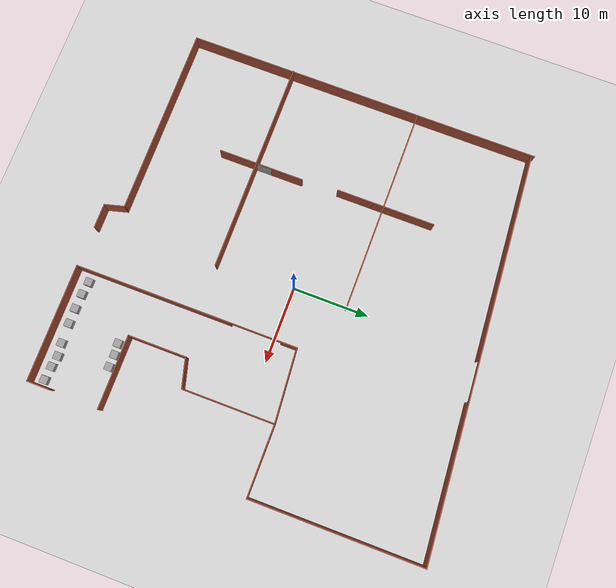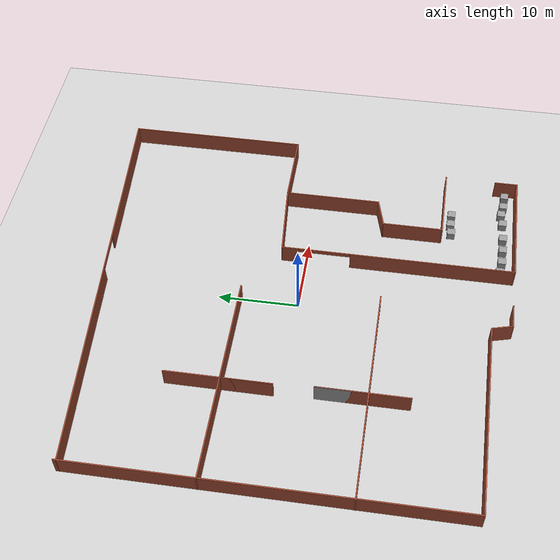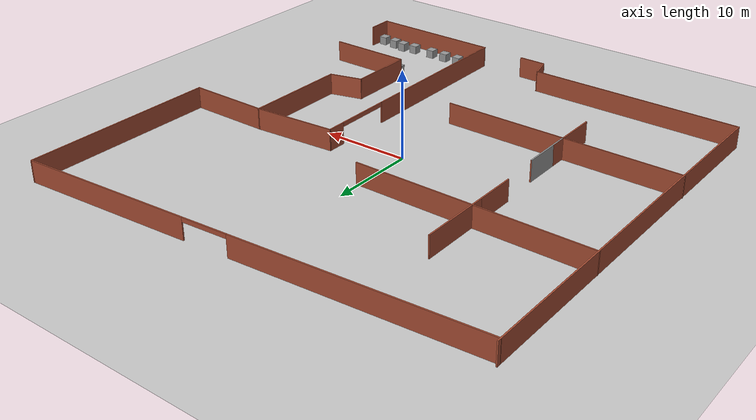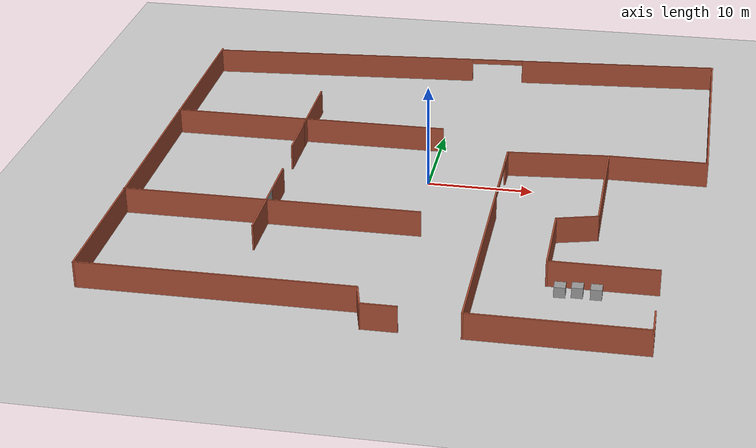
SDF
<sdf version="1.7">
 <world name="default">
  <light name="sun" type="directional">
   <pose>0 0 10 0 -0 0</pose>
   <diffuse>0.8 0.8 0.8 1</diffuse>
   <specular>0.2 0.2 0.2 1</specular>
   <attenuation>
    <range>1000</range>
    <constant>0.9</constant>
    <linear>0.01</linear>
    <quadratic>0.001</quadratic>
   </attenuation>
   <direction>-0.5 0.1 -0.9</direction>
   <spot><inner_angle>0</inner_angle><outer_angle>0</outer_angle><falloff>0</falloff></spot>
  </light>
  <model name="ground_plane">
   <static>1</static>
   <link name="link">
    <collision name="collision">
     <geometry><plane><normal>0 0 1</normal><size>100 100</size></plane></geometry>
     <surface>
      <contact><collide_bitmask>65535</collide_bitmask></contact>
      <friction><ode><mu>100</mu><mu2>50</mu2></ode></friction>
     </surface>
    </collision>
    <visual name="visual">
     <cast_shadows>0</cast_shadows>
     <geometry><plane><normal>0 0 1</normal><size>100 100</size></plane></geometry>
     <material>
      <script><uri>file://media/materials/scripts/gazebo.material</uri><name>Gazebo/Grey</name></script>
     </material>
    </visual>
   </link>
  </model>
  <gravity>0 0 -9.8</gravity>
  <magnetic_field>6e-06 2.3e-05 -4.2e-05</magnetic_field>
  <atmosphere type="adiabatic"/>
  <physics type="ode">
   <max_step_size>0.001</max_step_size>
   <real_time_factor>1</real_time_factor>
   <real_time_update_rate>1000</real_time_update_rate>
  </physics>
  <scene><ambient>0.4 0.4 0.4 1</ambient><background>0.7 0.7 0.7 1</background><shadows>1</shadows></scene>
  <spherical_coordinates>
   <surface_model>EARTH_WGS84</surface_model>
   <latitude_deg>0</latitude_deg>
   <longitude_deg>0</longitude_deg>
   <elevation>0</elevation>
   <heading_deg>0</heading_deg>
  </spherical_coordinates>
  <model name="edificio">
   <pose>-0.252096 0.100366 0 0 -0 0</pose>
   <link name="Wall_23">
    <collision name="Wall_23_Collision">
     <geometry><box><size>46.75 0.15 2.5</size></box></geometry>
     <pose>0 0 1.25 0 -0 0</pose>
    </collision>
    <visual name="Wall_23_Visual">
     <pose>0 0 1.25 0 -0 0</pose>
     <geometry><box><size>46.75 0.15 2.5</size></box></geometry>
     <material>
      <script><uri>file://media/materials/scripts/gazebo.material</uri><name>Gazebo/Bricks</name></script>
      <ambient>1 1 1 1</ambient>
     </material>
     <meta><layer>0</layer></meta>
    </visual>
    <pose>-26.3118 -0.446028 0 0 -0 -1.5708</pose>
   </link>
   <link name="Wall_24">
    <collision name="Wall_24_Collision">
     <geometry><box><size>24.75 0.15 2.5</size></box></geometry>
     <pose>0 0 1.25 0 -0 0</pose>
    </collision>
    <visual name="Wall_24_Visual">
     <pose>0 0 1.25 0 -0 0</pose>
     <geometry><box><size>24.75 0.15 2.5</size></box></geometry>
     <material>
      <script><uri>file://media/materials/scripts/gazebo.material</uri><name>Gazebo/Bricks</name></script>
      <ambient>1 1 1 1</ambient>
     </material>
     <meta><layer>0</layer></meta>
    </visual>
    <pose>-14.0118 -23.746 0 0 -0 0</pose>
   </link>
   <link name="Wall_25">
    <collision name="Wall_25_Collision">
     <geometry><box><size>2.75 0.15 2.5</size></box></geometry>
     <pose>0 0 1.25 0 -0 0</pose>
    </collision>
    <visual name="Wall_25_Visual">
     <pose>0 0 1.25 0 -0 0</pose>
     <geometry><box><size>2.75 0.15 2.5</size></box></geometry>
     <material>
      <script><uri>file://media/materials/scripts/gazebo.material</uri><name>Gazebo/Bricks</name></script>
      <ambient>1 1 1 1</ambient>
     </material>
     <meta><layer>0</layer></meta>
    </visual>
    <pose>-1.37532 -25.0017 0 0 -0 -1.309</pose>
   </link>
   <link name="Wall_26">
    <collision name="Wall_26_Collision">
     <geometry><box><size>3.25 0.15 2.5</size></box></geometry>
     <pose>0 0 1.25 0 -0 0</pose>
    </collision>
    <visual name="Wall_26_Visual">
     <pose>0 0 1.25 0 -0 0</pose>
     <geometry><box><size>3.25 0.15 2.5</size></box></geometry>
     <material>
      <script><uri>file://media/materials/scripts/gazebo.material</uri><name>Gazebo/Bricks</name></script>
      <ambient>1 1 1 1</ambient>
     </material>
     <meta><layer>0</layer></meta>
    </visual>
    <pose>0.511142 -26.2574 0 0 -0 0</pose>
   </link>
   <link name="Wall_28">
    <collision name="Wall_28_Collision">
     <geometry><box><size>15.5 0.15 2.5</size></box></geometry>
     <pose>0 0 1.25 0 -0 0</pose>
    </collision>
    <visual name="Wall_28_Visual">
     <pose>0 0 1.25 0 -0 0</pose>
     <geometry><box><size>15.5 0.15 2.5</size></box></geometry>
     <material>
      <script><uri>file://media/materials/scripts/gazebo.material</uri><name>Gazebo/Bricks</name></script>
      <ambient>1 1 1 1</ambient>
     </material>
     <meta><layer>0</layer></meta>
    </visual>
    <pose>15.1194 -26.359 0 0 -0 0</pose>
   </link>
   <link name="Wall_29">
    <collision name="Wall_29_Collision">
     <geometry><box><size>3 0.15 2.5</size></box></geometry>
     <pose>0 0 1.25 0 -0 0</pose>
    </collision>
    <visual name="Wall_29_Visual">
     <pose>0 0 1.25 0 -0 0</pose>
     <geometry><box><size>3 0.15 2.5</size></box></geometry>
     <material>
      <script><uri>file://media/materials/scripts/gazebo.material</uri><name>Gazebo/Bricks</name></script>
      <ambient>1 1 1 1</ambient>
     </material>
     <meta><layer>0</layer></meta>
    </visual>
    <pose>22.7944 -24.934 0 0 -0 1.5708</pose>
   </link>
   <link name="Wall_31">
    <collision name="Wall_31_Collision">
     <geometry><box><size>9.75 0.15 2.5</size></box></geometry>
     <pose>0 0 1.25 0 -0 0</pose>
    </collision>
    <visual name="Wall_31_Visual">
     <pose>0 0 1.25 0 -0 0</pose>
     <geometry><box><size>9.75 0.15 2.5</size></box></geometry>
     <material>
      <script><uri>file://media/materials/scripts/gazebo.material</uri><name>Gazebo/Bricks</name></script>
      <ambient>1 1 1 1</ambient>
     </material>
     <meta><layer>0</layer></meta>
    </visual>
    <pose>18.1011 -16.9428 0 0 -0 3.14159</pose>
   </link>
   <link name="Wall_32">
    <collision name="Wall_32_Collision">
     <geometry><box><size>7.75 0.15 2.5</size></box></geometry>
     <pose>0 0 1.25 0 -0 0</pose>
    </collision>
    <visual name="Wall_32_Visual">
     <pose>0 0 1.25 0 -0 0</pose>
     <geometry><box><size>7.75 0.15 2.5</size></box></geometry>
     <material>
      <script><uri>file://media/materials/scripts/gazebo.material</uri><name>Gazebo/Bricks</name></script>
      <ambient>1 1 1 1</ambient>
     </material>
     <meta><layer>0</layer></meta>
    </visual>
    <pose>13.3011 -13.1428 0 0 -0 1.5708</pose>
   </link>
   <link name="Wall_33">
    <collision name="Wall_33_Collision">
     <geometry><box><size>4 0.15 2.5</size></box></geometry>
     <pose>0 0 1.25 0 -0 0</pose>
    </collision>
    <visual name="Wall_33_Visual">
     <pose>0 0 1.25 0 -0 0</pose>
     <geometry><box><size>4 0.15 2.5</size></box></geometry>
     <material>
      <script><uri>file://media/materials/scripts/gazebo.material</uri><name>Gazebo/Bricks</name></script>
      <ambient>1 1 1 1</ambient>
     </material>
     <meta><layer>0</layer></meta>
    </visual>
    <pose>15.1605 -8.84454 0 0 -0 0.261799</pose>
   </link>
   <link name="Wall_34">
    <collision name="Wall_34_Collision">
     <geometry><box><size>12.25 0.15 2.5</size></box></geometry>
     <pose>0 0 1.25 0 -0 0</pose>
    </collision>
    <visual name="Wall_34_Visual">
     <pose>0 0 1.25 0 -0 0</pose>
     <geometry><box><size>12.25 0.15 2.5</size></box></geometry>
     <material>
      <script><uri>file://media/materials/scripts/gazebo.material</uri><name>Gazebo/Bricks</name></script>
      <ambient>1 1 1 1</ambient>
     </material>
     <meta><layer>0</layer></meta>
    </visual>
    <pose>17.02 -2.29631 0 0 -0 1.5708</pose>
   </link>
   <link name="Wall_35">
    <collision name="Wall_35_Collision">
     <geometry><box><size>9.5 0.15 2.5</size></box></geometry>
     <pose>0 0 1.25 0 -0 0</pose>
    </collision>
    <visual name="Wall_35_Visual">
     <pose>0 0 1.25 0 -0 0</pose>
     <geometry><box><size>9.5 0.15 2.5</size></box></geometry>
     <material>
      <script><uri>file://media/materials/scripts/gazebo.material</uri><name>Gazebo/Bricks</name></script>
      <ambient>1 1 1 1</ambient>
     </material>
     <meta><layer>0</layer></meta>
    </visual>
    <pose>21.695 3.75369 0 0 -0 0</pose>
   </link>
   <link name="Wall_36">
    <collision name="Wall_36_Collision">
     <geometry><box><size>22.75 0.15 2.5</size></box></geometry>
     <pose>0 0 1.25 0 -0 0</pose>
    </collision>
    <visual name="Wall_36_Visual">
     <pose>0 0 1.25 0 -0 0</pose>
     <geometry><box><size>22.75 0.15 2.5</size></box></geometry>
     <material>
      <script><uri>file://media/materials/scripts/gazebo.material</uri><name>Gazebo/Bricks</name></script>
      <ambient>1 1 1 1</ambient>
     </material>
     <meta><layer>0</layer></meta>
    </visual>
    <pose>26.37 15.0537 0 0 -0 1.5708</pose>
   </link>
   <link name="Wall_37">
    <pose>0.029084 24.4262 0 0 -0 -3.06855</pose>
    <visual name="Wall_37_Visual_0">
     <pose>-16.3631 0 1.25 0 -0 0</pose>
     <geometry><box><size>20.2464 0.15 2.5</size></box></geometry>
     <material>
      <script><uri>file://media/materials/scripts/gazebo.material</uri><name>Gazebo/Bricks</name></script>
      <ambient>1 1 1 1</ambient>
     </material>
     <meta><layer>0</layer></meta>
    </visual>
    <collision name="Wall_37_Collision_0">
     <geometry><box><size>20.2464 0.15 2.5</size></box></geometry>
     <pose>-16.3631 0 1.25 0 -0 0</pose>
    </collision>
    <visual name="Wall_37_Visual_1">
     <pose>12.7627 0 1.25 0 -0 0</pose>
     <geometry><box><size>27.4473 0.15 2.5</size></box></geometry>
     <material>
      <script><uri>file://media/materials/scripts/gazebo.material</uri><name>Gazebo/Bricks</name></script>
      <ambient>1 1 1 1</ambient>
     </material>
     <meta><layer>0</layer></meta>
    </visual>
    <collision name="Wall_37_Collision_1">
     <geometry><box><size>27.4473 0.15 2.5</size></box></geometry>
     <pose>12.7627 0 1.25 0 -0 0</pose>
    </collision>
    <visual name="Wall_37_Visual_2">
     <pose>-3.60041 0 2.25 0 -0 0</pose>
     <geometry><box><size>5.27891 0.15 0.5</size></box></geometry>
     <material>
      <script><uri>file://media/materials/scripts/gazebo.material</uri><name>Gazebo/Bricks</name></script>
      <ambient>1 1 1 1</ambient>
     </material>
     <meta><layer>0</layer></meta>
    </visual>
    <collision name="Wall_37_Collision_2">
     <geometry><box><size>5.27891 0.15 0.5</size></box></geometry>
     <pose>-3.60041 0 2.25 0 -0 0</pose>
    </collision>
   </link>
   <link name="Wall_39">
    <collision name="Wall_39_Collision">
     <geometry><box><size>27.75 0.15 2.5</size></box></geometry>
     <pose>0 0 1.25 0 -0 0</pose>
    </collision>
    <visual name="Wall_39_Visual">
     <pose>0 0 1.25 0 -0 0</pose>
     <geometry><box><size>27.75 0.15 2.5</size></box></geometry>
     <material>
      <script><uri>file://media/materials/scripts/gazebo.material</uri><name>Gazebo/Bricks</name></script>
      <ambient>1 1 1 1</ambient>
     </material>
     <meta><layer>0</layer></meta>
    </visual>
    <pose>-12.5752 -10.1814 0 0 -0 0</pose>
   </link>
   <link name="Wall_41">
    <collision name="Wall_41_Collision">
     <geometry><box><size>27 0.15 2.5</size></box></geometry>
     <pose>0 0 1.25 0 -0 0</pose>
    </collision>
    <visual name="Wall_41_Visual">
     <pose>0 0 1.25 0 -0 0</pose>
     <geometry><box><size>27 0.15 2.5</size></box></geometry>
     <material>
      <script><uri>file://media/materials/scripts/gazebo.material</uri><name>Gazebo/Bricks</name></script>
      <ambient>1 1 1 1</ambient>
     </material>
     <meta><layer>0</layer></meta>
    </visual>
    <pose>-12.9195 7.01384 0 0 -0 0</pose>
   </link>
   <link name="Wall_43">
    <collision name="Wall_43_Collision">
     <geometry><box><size>6.25 0.15 2.5</size></box></geometry>
     <pose>0 0 1.25 0 -0 0</pose>
    </collision>
    <visual name="Wall_43_Visual">
     <pose>0 0 1.25 0 -0 0</pose>
     <geometry><box><size>6.25 0.15 2.5</size></box></geometry>
     <material>
      <script><uri>file://media/materials/scripts/gazebo.material</uri><name>Gazebo/Bricks</name></script>
      <ambient>1 1 1 1</ambient>
     </material>
     <meta><layer>0</layer></meta>
    </visual>
    <pose>-13.249 3.89862 0 0 -0 -1.5708</pose>
   </link>
   <link name="Wall_44">
    <collision name="Wall_44_Collision">
     <geometry><box><size>13 0.15 2.5</size></box></geometry>
     <pose>0 0 1.25 0 -0 0</pose>
    </collision>
    <visual name="Wall_44_Visual">
     <pose>0 0 1.25 0 -0 0</pose>
     <geometry><box><size>13 0.15 2.5</size></box></geometry>
     <material>
      <script><uri>file://media/materials/scripts/gazebo.material</uri><name>Gazebo/Bricks</name></script>
      <ambient>1 1 1 1</ambient>
     </material>
     <meta><layer>0</layer></meta>
    </visual>
    <pose>-13.249 7.27362 0 0 -0 1.5708</pose>
   </link>
   <link name="Wall_46">
    <collision name="Wall_46_Collision">
     <geometry><box><size>6.25 0.15 2.5</size></box></geometry>
     <pose>0 0 1.25 0 -0 0</pose>
    </collision>
    <visual name="Wall_46_Visual">
     <pose>0 0 1.25 0 -0 0</pose>
     <geometry><box><size>6.25 0.15 2.5</size></box></geometry>
     <material>
      <script><uri>file://media/materials/scripts/gazebo.material</uri><name>Gazebo/Grey</name></script>
      <ambient>1 1 1 1</ambient>
     </material>
     <meta><layer>0</layer></meta>
    </visual>
    <pose>-12.9428 -7.00978 0 0 -0 1.5708</pose>
   </link>
   <link name="Wall_47">
    <collision name="Wall_47_Collision">
     <geometry><box><size>11.25 0.15 2.5</size></box></geometry>
     <pose>0 0 1.25 0 -0 0</pose>
    </collision>
    <visual name="Wall_47_Visual">
     <pose>0 0 1.25 0 -0 0</pose>
     <geometry><box><size>11.25 0.15 2.5</size></box></geometry>
     <material>
      <script><uri>file://media/materials/scripts/gazebo.material</uri><name>Gazebo/Bricks</name></script>
      <ambient>1 1 1 1</ambient>
     </material>
     <meta><layer>0</layer></meta>
    </visual>
    <pose>-12.9428 -9.50977 0 0 -0 -1.5708</pose>
   </link>
   <link name="Wall_49">
    <pose>7.44437 -11.684 0 0 -0 1.5708</pose>
    <visual name="Wall_49_Visual_0">
     <pose>-4.37121 0 1.25 0 -0 0</pose>
     <geometry><box><size>20.7576 0.15 2.5</size></box></geometry>
     <material>
      <script><uri>file://media/materials/scripts/gazebo.material</uri><name>Gazebo/Bricks</name></script>
      <ambient>1 1 1 1</ambient>
     </material>
     <meta><layer>0</layer></meta>
    </visual>
    <collision name="Wall_49_Collision_0">
     <geometry><box><size>20.7576 0.15 2.5</size></box></geometry>
     <pose>-4.37121 0 1.25 0 -0 0</pose>
    </collision>
    <visual name="Wall_49_Visual_1">
     <pose>13.6476 0 1.25 0 -0 0</pose>
     <geometry><box><size>2.2048 0.15 2.5</size></box></geometry>
     <material>
      <script><uri>file://media/materials/scripts/gazebo.material</uri><name>Gazebo/Bricks</name></script>
      <ambient>1 1 1 1</ambient>
     </material>
     <meta><layer>0</layer></meta>
    </visual>
    <collision name="Wall_49_Collision_1">
     <geometry><box><size>2.2048 0.15 2.5</size></box></geometry>
     <pose>13.6476 0 1.25 0 -0 0</pose>
    </collision>
    <visual name="Wall_49_Visual_2">
     <pose>9.27639 0 2.25 0 -0 0</pose>
     <geometry><box><size>6.53762 0.15 0.5</size></box></geometry>
     <material>
      <script><uri>file://media/materials/scripts/gazebo.material</uri><name>Gazebo/Bricks</name></script>
      <ambient>1 1 1 1</ambient>
     </material>
     <meta><layer>0</layer></meta>
    </visual>
    <collision name="Wall_49_Collision_2">
     <geometry><box><size>6.53762 0.15 0.5</size></box></geometry>
     <pose>9.27639 0 2.25 0 -0 0</pose>
    </collision>
   </link>
   <link name="Wall_50">
    <collision name="Wall_50_Collision">
     <geometry><box><size>9.75591 0.15 2.5</size></box></geometry>
     <pose>0 0 1.25 0 -0 0</pose>
    </collision>
    <visual name="Wall_50_Visual">
     <pose>0 0 1.25 0 -0 0</pose>
     <geometry><box><size>9.75591 0.15 2.5</size></box></geometry>
     <material>
      <script><uri>file://media/materials/scripts/gazebo.material</uri><name>Gazebo/Bricks</name></script>
      <ambient>1 1 1 1</ambient>
     </material>
     <meta><layer>0</layer></meta>
    </visual>
    <pose>12.2322 3.37236 0 0 -0 0.079477</pose>
   </link>
   <static>1</static>
  </model>
  <model name="unit_box">
   <pose>14.3332 -18.0923 0.5 0 -0 0</pose>
   <link name="link">
    <inertial>
     <mass>1</mass>
     <inertia>
      <ixx>0.166667</ixx>
      <ixy>0</ixy>
      <ixz>0</ixz>
      <iyy>0.166667</iyy>
      <iyz>0</iyz>
      <izz>0.166667</izz>
     </inertia>
    </inertial>
    <collision name="collision"><geometry><box><size>1 1 1</size></box></geometry></collision>
    <visual name="visual">
     <geometry><box><size>1 1 1</size></box></geometry>
     <material>
      <script><name>Gazebo/Grey</name><uri>file://media/materials/scripts/gazebo.material</uri></script>
     </material>
    </visual>
   </link>
  </model>
  <model name="unit_box_0">
   <pose>15.815 -17.9494 0.5 0 -0 0</pose>
   <link name="link">
    <inertial>
     <mass>1</mass>
     <inertia>
      <ixx>0.166667</ixx>
      <ixy>0</ixy>
      <ixz>0</ixz>
      <iyy>0.166667</iyy>
      <iyz>0</iyz>
      <izz>0.166667</izz>
     </inertia>
    </inertial>
    <collision name="collision"><geometry><box><size>1 1 1</size></box></geometry></collision>
    <visual name="visual">
     <geometry><box><size>1 1 1</size></box></geometry>
     <material>
      <script><name>Gazebo/Grey</name><uri>file://media/materials/scripts/gazebo.material</uri></script>
     </material>
    </visual>
   </link>
  </model>
  <model name="unit_box_1">
   <pose>17.4288 -17.9945 0.5 0 -0 0</pose>
   <link name="link">
    <inertial>
     <mass>1</mass>
     <inertia>
      <ixx>0.166667</ixx>
      <ixy>0</ixy>
      <ixz>0</ixz>
      <iyy>0.166667</iyy>
      <iyz>0</iyz>
      <izz>0.166667</izz>
     </inertia>
    </inertial>
    <collision name="collision"><geometry><box><size>1 1 1</size></box></geometry></collision>
    <visual name="visual">
     <geometry><box><size>1 1 1</size></box></geometry>
     <material>
      <script><name>Gazebo/Grey</name><uri>file://media/materials/scripts/gazebo.material</uri></script>
     </material>
    </visual>
   </link>
  </model>
  <model name="unit_box_2">
   <pose>8.43633 -24.5631 0.5 0 -0 0</pose>
   <link name="link">
    <inertial>
     <mass>1</mass>
     <inertia>
      <ixx>0.166667</ixx>
      <ixy>0</ixy>
      <ixz>0</ixz>
      <iyy>0.166667</iyy>
      <iyz>0</iyz>
      <izz>0.166667</izz>
     </inertia>
    </inertial>
    <collision name="collision"><geometry><box><size>1 1 1</size></box></geometry></collision>
    <visual name="visual">
     <geometry><box><size>1 1 1</size></box></geometry>
     <material>
      <script><name>Gazebo/Grey</name><uri>file://media/materials/scripts/gazebo.material</uri></script>
     </material>
    </visual>
   </link>
  </model>
  <model name="unit_box_3">
   <pose>10.1683 -24.7899 0.5 0 -0 0</pose>
   <link name="link">
    <inertial>
     <mass>1</mass>
     <inertia>
      <ixx>0.166667</ixx>
      <ixy>0</ixy>
      <ixz>0</ixz>
      <iyy>0.166667</iyy>
      <iyz>0</iyz>
      <izz>0.166667</izz>
     </inertia>
    </inertial>
    <collision name="collision"><geometry><box><size>1 1 1</size></box></geometry></collision>
    <visual name="visual">
     <geometry><box><size>1 1 1</size></box></geometry>
     <material>
      <script><name>Gazebo/Grey</name><uri>file://media/materials/scripts/gazebo.material</uri></script>
     </material>
    </visual>
   </link>
  </model>
  <model name="unit_box_4">
   <pose>12.1633 -24.8482 0.5 0 -0 0</pose>
   <link name="link">
    <inertial>
     <mass>1</mass>
     <inertia>
      <ixx>0.166667</ixx>
      <ixy>0</ixy>
      <ixz>0</ixz>
      <iyy>0.166667</iyy>
      <iyz>0</iyz>
      <izz>0.166667</izz>
     </inertia>
    </inertial>
    <collision name="collision"><geometry><box><size>1 1 1</size></box></geometry></collision>
    <visual name="visual">
     <geometry><box><size>1 1 1</size></box></geometry>
     <material>
      <script><name>Gazebo/Grey</name><uri>file://media/materials/scripts/gazebo.material</uri></script>
     </material>
    </visual>
   </link>
  </model>
  <model name="unit_box_5">
   <pose>14.1635 -24.8227 0.5 0 -0 0</pose>
   <link name="link">
    <inertial>
     <mass>1</mass>
     <inertia>
      <ixx>0.166667</ixx>
      <ixy>0</ixy>
      <ixz>0</ixz>
      <iyy>0.166667</iyy>
      <iyz>0</iyz>
      <izz>0.166667</izz>
     </inertia>
    </inertial>
    <collision name="collision"><geometry><box><size>1 1 1</size></box></geometry></collision>
    <visual name="visual">
     <geometry><box><size>1 1 1</size></box></geometry>
     <material>
      <script><name>Gazebo/Grey</name><uri>file://media/materials/scripts/gazebo.material</uri></script>
     </material>
    </visual>
   </link>
  </model>
  <model name="unit_box_6">
   <pose>16.7776 -24.7183 0.5 0 -0 0</pose>
   <link name="link">
    <inertial>
     <mass>1</mass>
     <inertia>
      <ixx>0.166667</ixx>
      <ixy>0</ixy>
      <ixz>0</ixz>
      <iyy>0.166667</iyy>
      <iyz>0</iyz>
      <izz>0.166667</izz>
     </inertia>
    </inertial>
    <collision name="collision"><geometry><box><size>1 1 1</size></box></geometry></collision>
    <visual name="visual">
     <geometry><box><size>1 1 1</size></box></geometry>
     <material>
      <script><name>Gazebo/Grey</name><uri>file://media/materials/scripts/gazebo.material</uri></script>
     </material>
    </visual>
   </link>
  </model>
  <model name="unit_box_7">
   <pose>18.4432 -24.4952 0.5 0 -0 0</pose>
   <link name="link">
    <inertial>
     <mass>1</mass>
     <inertia>
      <ixx>0.166667</ixx>
      <ixy>0</ixy>
      <ixz>0</ixz>
      <iyy>0.166667</iyy>
      <iyz>0</iyz>
      <izz>0.166667</izz>
     </inertia>
    </inertial>
    <collision name="collision"><geometry><box><size>1 1 1</size></box></geometry></collision>
    <visual name="visual">
     <geometry><box><size>1 1 1</size></box></geometry>
     <material>
      <script><name>Gazebo/Grey</name><uri>file://media/materials/scripts/gazebo.material</uri></script>
     </material>
    </visual>
   </link>
  </model>
  <model name="unit_box_8">
   <pose>19.9089 -24.7161 0.5 0 -0 0</pose>
   <link name="link">
    <inertial>
     <mass>1</mass>
     <inertia>
      <ixx>0.166667</ixx>
      <ixy>0</ixy>
      <ixz>0</ixz>
      <iyy>0.166667</iyy>
      <iyz>0</iyz>
      <izz>0.166667</izz>
     </inertia>
    </inertial>
    <collision name="collision"><geometry><box><size>1 1 1</size></box></geometry></collision>
    <visual name="visual">
     <geometry><box><size>1 1 1</size></box></geometry>
     <material>
      <script><name>Gazebo/Grey</name><uri>file://media/materials/scripts/gazebo.material</uri></script>
     </material>
    </visual>
   </link>
  </model>
  <model name="unit_box_9">
   <pose>21.7269 -24.8593 0.5 0 -0 0</pose>
   <link name="link">
    <inertial>
     <mass>1</mass>
     <inertia>
      <ixx>0.166667</ixx>
      <ixy>0</ixy>
      <ixz>0</ixz>
      <iyy>0.166667</iyy>
      <iyz>0</iyz>
      <izz>0.166667</izz>
     </inertia>
    </inertial>
    <collision name="collision"><geometry><box><size>1 1 1</size></box></geometry></collision>
    <visual name="visual">
     <geometry><box><size>1 1 1</size></box></geometry>
     <material>
      <script><name>Gazebo/Grey</name><uri>file://media/materials/scripts/gazebo.material</uri></script>
     </material>
    </visual>
   </link>
  </model>
 </world>
</sdf>
